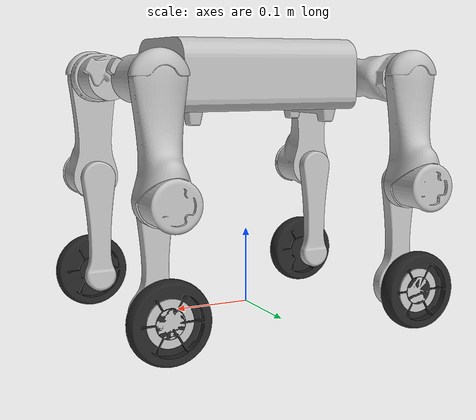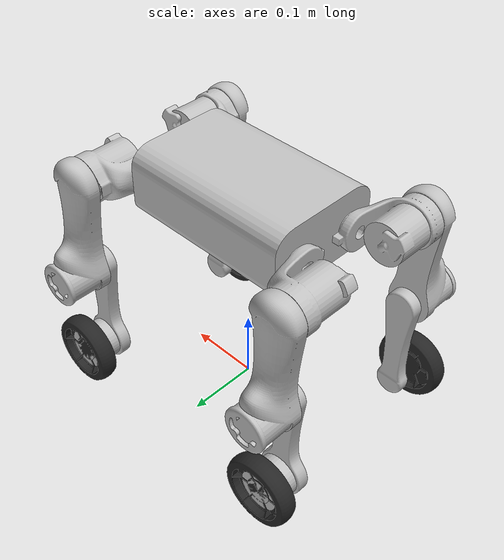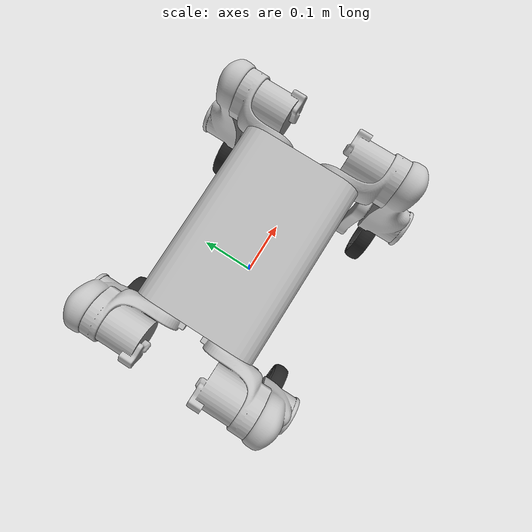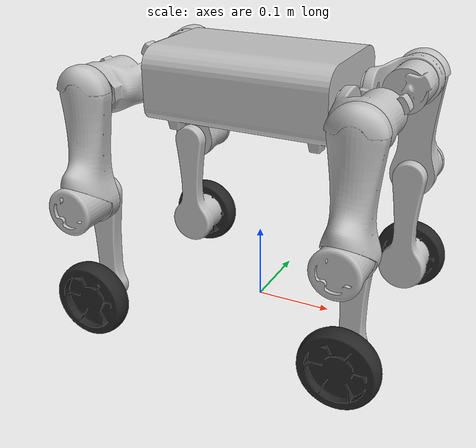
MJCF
<mujoco model="yun1w">
  <compiler angle="radian" meshdir="" autolimits="true" />

  <option cone="elliptic" impratio="100" />

  <default>
    <default class="yun1w">
      <geom friction="1.0 1.0" margin="0.001" solref = "0.005 1" condim="3"/>
      <joint axis="0 1 0" damping="0.1" armature="0.01" frictionloss="0.2"/>
      <motor ctrlrange="-14 14"/>
      <default class="abduction">
        <joint axis="1 0 0" range="-0.8727 0.8727"/>
      </default>
      <default class="hip">
        <default class="front_hip">
          <joint range="-2.7925 2.7925"/>
        </default>
        <default class="back_hip">
          <joint range="-2.7925 2.7925"/>
        </default>
      </default>
      <default class="knee">
        <joint range="-2.7053 2.7053"/>
      </default>
      <default class="visual">
        <geom type="mesh" contype="0" conaffinity="0" group="2"/>
      </default>
      <default class="collision">
        <geom group="3"/>
        <default class="foot">
          <geom size="0.001" pos="0 0 -0.135" priority="1" condim="6"
            friction="1.0 0.02 0.01"/>
        </default>
      </default>
    </default>
  </default>

  <asset>
    <mesh name="base_link" file="./meshes/base_link.STL" />

    <mesh name="fl_hip_Link" file="./meshes/fl_hip_Link.STL" />
    <mesh name="fl_thigh_Link" file="./meshes/fl_thigh_Link.STL" />
    <mesh name="fl_calf_Link" file="./meshes/fl_calf_Link.STL" />
    <mesh name="fl_wheel_Link" file="./meshes/fl_wheel_Link.STL" />

    <mesh name="fr_hip_Link" file="./meshes/fr_hip_Link.STL" />
    <mesh name="fr_thigh_Link" file="./meshes/fr_thigh_Link.STL" />
    <mesh name="fr_calf_Link" file="./meshes/fr_calf_Link.STL" />
    <mesh name="fr_wheel_Link" file="./meshes/fr_wheel_Link.STL" />

    <mesh name="rl_hip_Link" file="./meshes/rl_hip_Link.STL" />
    <mesh name="rl_thigh_Link" file="./meshes/rl_thigh_Link.STL" />
    <mesh name="rl_calf_Link" file="./meshes/rl_calf_Link.STL" />
    <mesh name="rl_wheel_Link" file="./meshes/rl_wheel_Link.STL" />

    <mesh name="rr_hip_Link" file="./meshes/rr_hip_Link.STL" />
    <mesh name="rr_thigh_Link" file="./meshes/rr_thigh_Link.STL" />
    <mesh name="rr_calf_Link" file="./meshes/rr_calf_Link.STL" />
    <mesh name="rr_wheel_Link" file="./meshes/rr_wheel_Link.STL" />
  </asset>

  <worldbody>
    <body name="base_link" pos="0 0 0.3" childclass="yun1w">
      <inertial pos="0.00383944 0.00032322 0.00132292" quat="1 0 0 0"
        mass="2.87129405"
        diaginertia="0.00758086 0.01707296 0.02157473" />
      <freejoint />
      <geom type="mesh" mesh="base_link" rgba="0.752941176470588 0.752941176470588 0.752941176470588 1"/>
      <geom type="mesh" mesh="base_link" class="collision"/>
      <site name="imu" pos="0.0 0 -0.0" />

      <body name="fl_hip_Link" pos="0.1125 0.045 0">
        <inertial pos="0.05181106 0.02890945 -0.00025930" quat="1 0 0 0"
          mass="0.40036239"
          diaginertia="0.00027388 0.00028655 0.00034645" />
        <joint name="fl_hip_Joint" class="abduction" />
        <geom type="mesh" mesh="fl_hip_Link" rgba="0.752941176470588 0.752941176470588 0.752941176470588 1"/>
        <geom type="mesh" mesh="fl_hip_Link" class="collision"/>
        <body name="fl_thigh_Link" pos="0.0575 0.0525 0">
          <inertial pos="-0.00025469 0.04391819 -0.10445464" quat="1 0 0 0"
            mass="0.47156059"
            diaginertia="0.00157037 0.00153438 0.00030139" />
          <joint name="fl_thigh_Joint" class="front_hip" />
          <geom type="mesh" mesh="fl_thigh_Link" rgba="0.752941176470588 0.752941176470588 0.752941176470588 1"/>
          <geom type="mesh" mesh="fl_thigh_Link" class="collision"/>
          <body name="fl_calf_Link" pos="0 0.026 -0.135">
            <inertial pos="-2.5e-06 -0.01533174 -0.06951052"
              quat="1 0 0 0"
              mass="0.08358392" diaginertia="0.00024129 0.00024771 1.351e-05" />
            <joint name="fl_calf_Joint" class="knee" />
            <geom type="mesh" mesh="fl_calf_Link" rgba="0.752941176470588 0.752941176470588 0.752941176470588 1"/>
            <geom type="mesh" mesh="fl_calf_Link" class="collision"/>
            <body name="fl_wheel_Link" pos="0 0.0315 -0.135">
              <inertial pos="0 0.00511591 0"
                quat="0 1 0 0" mass="0.09346820"
                diaginertia="7.631e-05 0.00014526 7.631e-05" />
              <joint name="fl_wheel_Joint" pos="0 0 0" axis="0 1 0" />
              <geom type="mesh" rgba="0.15 0.15 0.15 1" mesh="fl_wheel_Link" pos="0 0.0 0"
                quat="0.0 1.0 0.0 0.0" />
              <geom pos="0 0.0 0" quat="0.0 1.0 0.0 0.0" type="mesh" mesh="fl_wheel_Link" class="foot" />
            </body>
          </body>
        </body>
      </body>

      <body name="fr_hip_Link" pos="0.1125 -0.045 0">
        <inertial pos="0.05151195 -0.02890203 0.00025989" quat="1 0 0 0"
          mass="0.40021841"
          diaginertia="0.00027389 0.00028504 0.00034478" />
        <joint name="fr_hip_Joint" class="abduction" />
        <geom type="mesh" mesh="fr_hip_Link" rgba="0.752941176470588 0.752941176470588 0.752941176470588 1"/>
        <geom type="mesh" mesh="fr_hip_Link" class="collision"/>
        <body name="fr_thigh_Link" pos="0.0575 -0.0525 0">
          <inertial pos="0.00025469 -0.04391819 -0.10445464" quat="1 0 0 0"
            mass="0.47156059"
            diaginertia="0.00157037 0.00153438 0.00030139" />
          <joint name="fr_thigh_Joint" class="front_hip" />
          <geom type="mesh" mesh="fr_thigh_Link" rgba="0.752941176470588 0.752941176470588 0.752941176470588 1"/>
          <geom type="mesh" mesh="fr_thigh_Link" class="collision"/>
          <body name="fr_calf_Link" pos="0 -0.026 -0.135">
            <inertial pos="2.5e-06 0.01533174 -0.06951052"
              quat="1 0 0 0"
              mass="0.08358392" diaginertia="0.00024129 0.00024771 1.351e-05" />
            <joint name="fr_calf_Joint" class="knee" />
            <geom type="mesh" mesh="fr_calf_Link" rgba="0.752941176470588 0.752941176470588 0.752941176470588 1"/>
            <geom type="mesh" mesh="fr_calf_Link" class="collision"/>
            <body name="fr_wheel_Link" pos="0 -0.0315 -0.135">
              <inertial pos="0 -0.00511591 0"
                quat="0 1 0 0" mass="0.0934682"
                diaginertia="7.631e-05 0.00014526 7.631e-05" />
              <joint name="fr_wheel_Joint" pos="0 0 0" axis="0 1 0" />
              <geom type="mesh" rgba="0.15 0.15 0.15 1" mesh="fr_wheel_Link" pos="0 0.0 0"
                quat="0.0 1.0 0.0 0.0" />
              <geom pos="0 0.0 0" quat="0.0 1.0 0.0 0.0" type="mesh" mesh="fr_wheel_Link" class="foot" />
            </body>
          </body>
        </body>
      </body>

      <body name="rl_hip_Link" pos="-0.1125 0.045 0">
        <inertial pos="-0.05151195 0.02890203 0.00025989" quat="1 0 0 0"
          mass="0.40021841"
          diaginertia="0.00027389 0.00028504 0.00034478" />
        <joint name="rl_hip_Joint" class="abduction" />
        <geom type="mesh" mesh="rl_hip_Link" rgba="0.752941176470588 0.752941176470588 0.752941176470588 1"/>
        <geom type="mesh" mesh="rl_hip_Link" class="collision"/>
        <body name="rl_thigh_Link" pos="-0.0575 0.0525 0">
          <inertial pos="-0.00025469 0.04391819 -0.10445464" quat="1 0 0 0"
            mass="0.47156059"
            diaginertia="0.00157037 0.00153438 0.00030139" />
          <joint name="rl_thigh_Joint" class="back_hip" />
          <geom type="mesh" mesh="rl_thigh_Link" rgba="0.752941176470588 0.752941176470588 0.752941176470588 1"/>
          <geom type="mesh" mesh="rl_thigh_Link" class="collision"/>
          <body name="rl_calf_Link" pos="0 0.026 -0.135">
            <inertial pos="-2.5e-06 -0.01533174 -0.06951052"
              quat="1 0 0 0"
              mass="0.08358392" diaginertia="0.00024129 0.00024771 1.351e-05" />
            <joint name="rl_calf_Joint" class="knee" />
            <geom type="mesh" mesh="rl_calf_Link" rgba="0.752941176470588 0.752941176470588 0.752941176470588 1"/>
            <geom type="mesh" mesh="rl_calf_Link" class="collision"/>
            <body name="rl_wheel_Link" pos="0 0.0315 -0.135">
              <inertial pos="0 0.00511591 0"
                quat="0 1 0 0" mass="0.0934682"
                diaginertia="7.631e-05 0.00014526 7.631e-05" />
              <joint name="rl_wheel_Joint" pos="0 0 0" axis="0 1 0" />
              <geom type="mesh" rgba="0.15 0.15 0.15 1" mesh="rl_wheel_Link" pos="0 0.0 0"
                quat="0.0 1.0 0.0 0.0" />
              <geom pos="0 0.0 0" quat="0.0 1.0 0.0 0.0" type="mesh" mesh="rl_wheel_Link" class="foot" />
            </body>
          </body>
        </body>
      </body>

      <body name="rr_hip_Link" pos="-0.1125 -0.045 0">
        <inertial pos="-0.05181106 -0.02890945 -0.0002593" quat="1 0 0 0"
          mass="0.40036239"
          diaginertia="0.00027388 0.00028655 0.00034645" />
        <joint name="rr_hip_Joint" class="abduction" />
        <geom type="mesh" mesh="rr_hip_Link" rgba="0.752941176470588 0.752941176470588 0.752941176470588 1"/>
        <geom type="mesh" mesh="rr_hip_Link" class="collision"/>
        <body name="rr_thigh_Link" pos="-0.0575 -0.0525 0">
          <inertial pos="0.00025469 -0.04391819 -0.10445464" quat="1 0 0 0"
            mass="0.47156059"
            diaginertia="0.00157037 0.00153438 0.00030139" />
          <joint name="rr_thigh_Joint" class="back_hip" />
          <geom type="mesh" mesh="rr_thigh_Link" rgba="0.752941176470588 0.752941176470588 0.752941176470588 1"/>
          <geom type="mesh" mesh="rr_thigh_Link" class="collision"/>
          <body name="rr_calf_Link" pos="0 -0.026 -0.135">
            <inertial pos="2.5e-06 0.01533174 -0.06951052"
              quat="1 0 0 0"
              mass="0.08358392" diaginertia="0.00024129 0.00024771 1.351e-05" />
            <joint name="rr_calf_Joint" class="knee" />
            <geom type="mesh" mesh="rr_calf_Link" rgba="0.752941176470588 0.752941176470588 0.752941176470588 1"/>
            <geom type="mesh" mesh="rr_calf_Link" class="collision"/>
            <body name="rr_wheel_Link" pos="0 -0.0315 -0.135">
              <inertial pos="0 -0.00511591 0"
                quat="0 1 0 0" mass="0.0934682"
                diaginertia="7.631e-05 0.00014526 7.631e-05" />
              <joint name="rr_wheel_Joint" pos="0 0 0" axis="0 1 0" />
              <geom type="mesh" rgba="0.15 0.15 0.15 1" mesh="rr_wheel_Link" pos="0 0.0 0"
                quat="0.0 1.0 0.0 0.0" />
              <geom pos="0 0.0 0" quat="0.0 1.0 0.0 0.0" type="mesh" mesh="rr_wheel_Link" class="foot" />
            </body>
          </body>
        </body>
      </body>
    </body>
  </worldbody>

  <actuator>
    <motor class="abduction" name="fr_hip_Joint" joint="fr_hip_Joint" />
    <motor class="hip" name="fr_thigh_Joint" joint="fr_thigh_Joint" />
    <motor class="knee" name="fr_calf_Joint" joint="fr_calf_Joint" />

    <motor class="abduction" name="fl_hip_Joint" joint="fl_hip_Joint" />
    <motor class="hip" name="fl_thigh_Joint" joint="fl_thigh_Joint" />
    <motor class="knee" name="fl_calf_Joint" joint="fl_calf_Joint" />

    <motor class="abduction" name="rr_hip_Joint" joint="rr_hip_Joint" />
    <motor class="hip" name="rr_thigh_Joint" joint="rr_thigh_Joint" />
    <motor class="knee" name="rr_calf_Joint" joint="rr_calf_Joint" />

    <motor class="abduction" name="rl_hip_Joint" joint="rl_hip_Joint" />
    <motor class="hip" name="rl_thigh_Joint" joint="rl_thigh_Joint" />
    <motor class="knee" name="rl_calf_Joint" joint="rl_calf_Joint" />

    <motor ctrlrange="-15 15" name="fr_wheel_Link" joint="fr_wheel_Joint" />
    <motor ctrlrange="-15 15" name="fl_wheel_Link" joint="fl_wheel_Joint" />
    <motor ctrlrange="-15 15" name="rr_wheel_Link" joint="rr_wheel_Joint" />
    <motor ctrlrange="-15 15" name="rl_wheel_Link" joint="rl_wheel_Joint" />
  </actuator>

  <sensor>

    <jointpos name="fr_hip_pos" joint="fr_hip_Joint" />
    <jointpos name="fr_thigh_pos" joint="fr_thigh_Joint" />
    <jointpos name="fr_calf_pos" joint="fr_calf_Joint" />

    <jointpos name="fl_hip_pos" joint="fl_hip_Joint" />
    <jointpos name="fl_thigh_pos" joint="fl_thigh_Joint" />
    <jointpos name="fl_calf_pos" joint="fl_calf_Joint" />

    <jointpos name="rr_hip_pos" joint="rr_hip_Joint" />
    <jointpos name="rr_thigh_pos" joint="rr_thigh_Joint" />
    <jointpos name="rr_calf_pos" joint="rr_calf_Joint" />

    <jointpos name="rl_hip_pos" joint="rl_hip_Joint" />
    <jointpos name="rl_thigh_pos" joint="rl_thigh_Joint" />
    <jointpos name="rl_calf_pos" joint="rl_calf_Joint" />

    <jointpos name="fr_wheel_pos" joint="fr_wheel_Joint" />
    <jointpos name="fl_wheel_pos" joint="fl_wheel_Joint" />
    <jointpos name="rr_wheel_pos" joint="rr_wheel_Joint" />
    <jointpos name="rl_wheel_pos" joint="rl_wheel_Joint" />

    <jointvel name="fr_hip_vel" joint="fr_hip_Joint" />
    <jointvel name="fr_thigh_vel" joint="fr_thigh_Joint" />
    <jointvel name="fr_calf_vel" joint="fr_calf_Joint" />

    <jointvel name="fl_hip_vel" joint="fl_hip_Joint" />
    <jointvel name="fl_thigh_vel" joint="fl_thigh_Joint" />
    <jointvel name="fl_calf_vel" joint="fl_calf_Joint" />

    <jointvel name="rr_hip_vel" joint="rr_hip_Joint" />
    <jointvel name="rr_thigh_vel" joint="rr_thigh_Joint" />
    <jointvel name="rr_calf_vel" joint="rr_calf_Joint" />

    <jointvel name="rl_hip_vel" joint="rl_hip_Joint" />
    <jointvel name="rl_thigh_vel" joint="rl_thigh_Joint" />
    <jointvel name="rl_calf_vel" joint="rl_calf_Joint" />

    <jointvel name="fr_wheel_vel" joint="fr_wheel_Joint" noise="0.0"/>
    <jointvel name="fl_wheel_vel" joint="fl_wheel_Joint" noise="0.0"/>
    <jointvel name="rr_wheel_vel" joint="rr_wheel_Joint" noise="0.0"/>
    <jointvel name="rl_wheel_vel" joint="rl_wheel_Joint" noise="0.0"/>

    <jointactuatorfrc name="fr_hip_torque" joint="fr_hip_Joint" noise="0.01" />
    <jointactuatorfrc name="fr_thigh_torque" joint="fr_thigh_Joint" noise="0.01" />
    <jointactuatorfrc name="fr_calf_torque" joint="fr_calf_Joint" noise="0.01" />

    <jointactuatorfrc name="fl_hip_torque" joint="fl_hip_Joint" noise="0.01" />
    <jointactuatorfrc name="fl_thigh_torque" joint="fl_thigh_Joint" noise="0.01" />
    <jointactuatorfrc name="fl_calf_torque" joint="fl_calf_Joint" noise="0.01" />

    <jointactuatorfrc name="rr_hip_torque" joint="rr_hip_Joint" noise="0.01" />
    <jointactuatorfrc name="rr_thigh_torque" joint="rr_thigh_Joint" noise="0.01" />
    <jointactuatorfrc name="rr_calf_torque" joint="rr_calf_Joint" noise="0.01" />

    <jointactuatorfrc name="rl_hip_torque" joint="rl_hip_Joint" noise="0.01" />
    <jointactuatorfrc name="rl_thigh_torque" joint="rl_thigh_Joint" noise="0.01" />
    <jointactuatorfrc name="rl_calf_torque" joint="rl_calf_Joint" noise="0.01" />

    <jointactuatorfrc name="fr_wheel_torque" joint="fr_wheel_Joint" />
    <jointactuatorfrc name="fl_wheel_torque" joint="fl_wheel_Joint" />
    <jointactuatorfrc name="rr_wheel_torque" joint="rr_wheel_Joint" />
    <jointactuatorfrc name="rl_wheel_torque" joint="rl_wheel_Joint" />

    <framequat name="imu_quat" objtype="site" objname="imu" />
    <gyro name="imu_gyro" site="imu" />
    <accelerometer name="imu_acc" site="imu" />

    <framepos name="frame_pos" objtype="site" objname="imu" />
    <framelinvel name="frame_vel" objtype="site" objname="imu" />
  </sensor>

  <keyframe>
  </keyframe>
</mujoco>
